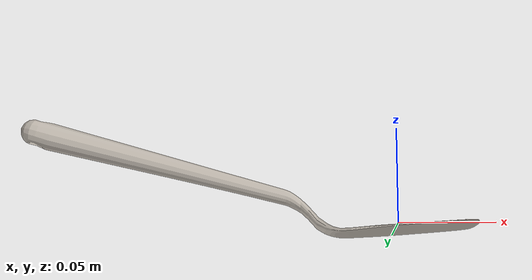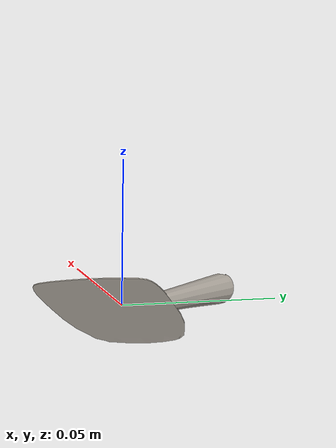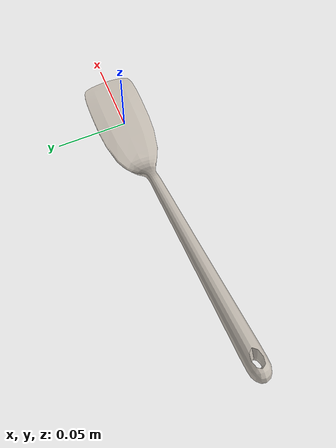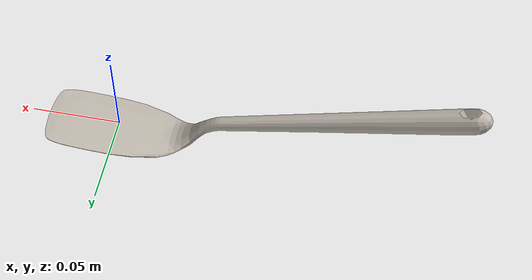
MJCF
<mujoco model="spatula">
  <asset>
    <mesh file="meshes/spatula.stl" name="spatula_mesh" scale="0.7 0.45 0.7"/>
    <texture file="../textures/bread.png" type="2d" name="tex-bread" />
    <material name="spatula" reflectance="0.7" texrepeat="15 15" texture="tex-bread" texuniform="true"/>
  </asset>
  <worldbody>
    <body>
      <body name="object">
        <geom pos="0 0 0" quat="0 0.149 0 0.988" mesh="spatula_mesh" type="mesh" material="spatula" conaffinity="0" contype="0" group="1"/>
      </body>
      <site rgba="0 0 0 0" size="0.005" pos="0 0 -0.045" name="bottom_site"/>
      <site rgba="0 0 0 0" size="0.005" pos="0 0 0.03" name="top_site"/>
      <site rgba="0 0 0 0" size="0.005" pos="0.03 0.03 0" name="horizontal_radius_site"/>
    </body>
  </worldbody>
</mujoco>
